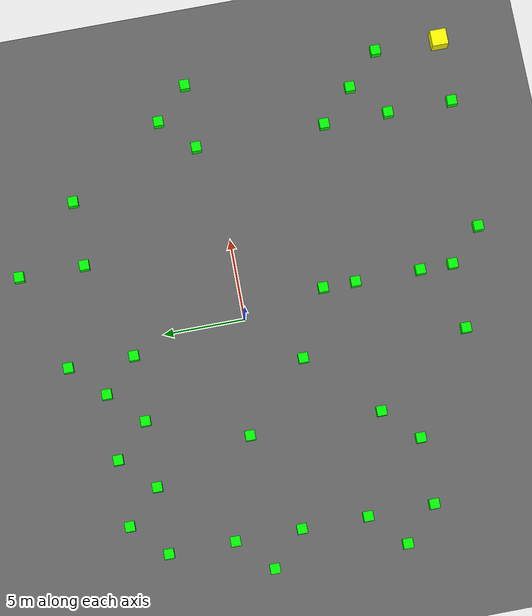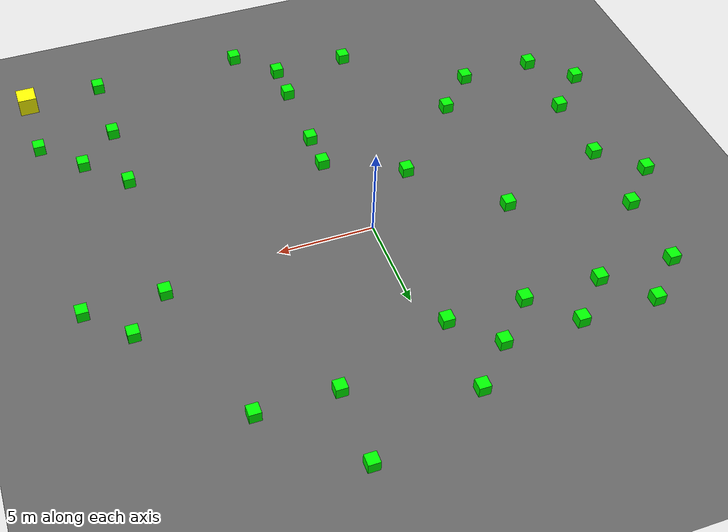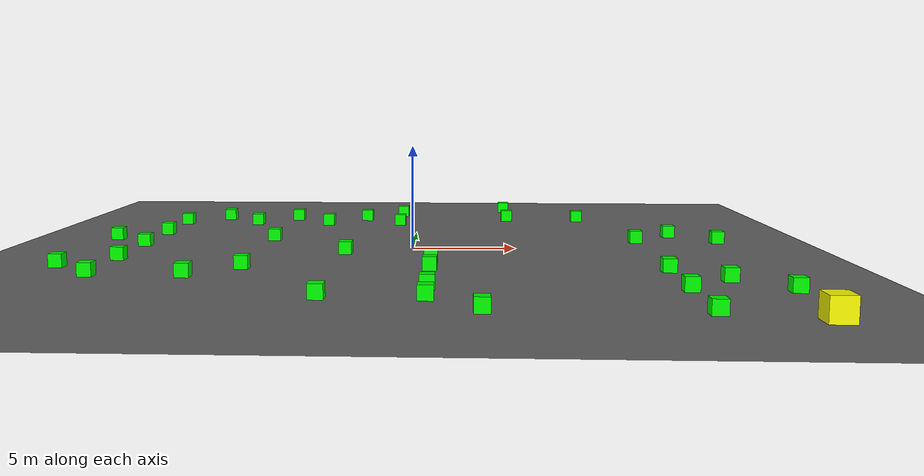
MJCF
<mujoco model="simple_navigation">
    <compiler angle="degree" coordinate="local" inertiafromgeom="true"/>
    <option integrator="RK4" timestep="0.01"/>

    <asset>
        <texture builtin="gradient" height="100" rgb1="0.6 0.8 1" rgb2="0 0 0" type="skybox" width="100"/>
        <texture name="floor_texture" type="2d" builtin="checker" width="100" height="100" rgb1="0 0 0" rgb2="0.8 0.8 0.8"/>
        <material name="MatPlane" reflectance="0.5" shininess="1" specular="1" texrepeat="10 10" texture="floor_texture"/>
    </asset>

    <!-- Excluding the contact between the agent and the goal, and the agent and the floor -->
    <contact>
        <exclude body1="agent" body2="goal"/>
        <exclude body1 = "agent" body2 = "floor"/>
    </contact>

    <extension>
        <plugin plugin = "mujoco.pid">
            <instance name = "pid1">
                <config key="kp" value="2"/>
                <config key="ki" value="0"/>
                <config key="kd" value="55"/>
            </instance>
        </plugin>
    </extension>

    <worldbody>
        <light cutoff="100" diffuse="1 1 1" dir="-0 0 -1.3" directional="true" exponent="1" pos="0 0 1.3" specular=".1 .1 .1"/>
        <body name="floor" pos="0 0 0">
            <geom name="floor_geom" type="plane" size="20 20 0.1" material="MatPlane"/>
        </body>

        <body name="goal" pos="-15.0 13.0 0">
            <geom name="goal_geom" type="plane" size="0.5 0.5 1" pos="0 0 0" rgba="1 0 0 1"/>
        </body>

        <body name="agent" pos="15.0 -15.0 0.5">
            <joint name="j1" type="slide" axis ="1 0 0 "/>
            <joint name="j2" type="slide" axis ="0 1 0 "/>
            <geom name="agent_geom" type="box" size="0.5 0.5 0.5" rgba="1 1 0 1"/>
        </body>

        <body name="obstacle1" pos="-1.0 7.0 0.5">
            <geom name="obstacle1_geom" type="box" size="0.3 0.3 0.3" rgba="0 1 0 1"/>
        </body>

        <body name="obstacle2" pos="-9.0 7.0 0.5">
            <geom name="obstacle2_geom" type="box" size="0.3 0.3 0.3" rgba="0 1 0 1"/>
        </body>

        <body name="obstacle3" pos="11.0 -15.0 0.5">
            <geom name="obstacle3_geom" type="box" size="0.3 0.3 0.3" rgba="0 1 0 1"/>
        </body>

        <body name="obstacle4" pos="-5.0 7.0 0.5">
            <geom name="obstacle4_geom" type="box" size="0.3 0.3 0.3" rgba="0 1 0 1"/>
        </body>

        <body name="obstacle5" pos="13.0 3.0 0.5">
            <geom name="obstacle5_geom" type="box" size="0.3 0.3 0.3" rgba="0 1 0 1"/>
        </body>

        <body name="obstacle6" pos="-1.0 11.0 0.5">
            <geom name="obstacle6_geom" type="box" size="0.3 0.3 0.3" rgba="0 1 0 1"/>
        </body>

        <body name="obstacle7" pos="-13.0 3.0 0.5">
            <geom name="obstacle7_geom" type="box" size="0.3 0.3 0.3" rgba="0 1 0 1"/>
        </body>

        <body name="obstacle8" pos="9.0 9.0 0.5">
            <geom name="obstacle8_geom" type="box" size="0.3 0.3 0.3" rgba="0 1 0 1"/>
        </body>

        <body name="obstacle9" pos="-3.0 9.0 0.5">
            <geom name="obstacle9_geom" type="box" size="0.3 0.3 0.3" rgba="0 1 0 1"/>
        </body>

        <body name="obstacle10" pos="-13.0 -5.0 0.5">
            <geom name="obstacle10_geom" type="box" size="0.3 0.3 0.3" rgba="0 1 0 1"/>
        </body>

        <body name="obstacle11" pos="1.0 -7.0 0.5">
            <geom name="obstacle11_geom" type="box" size="0.3 0.3 0.3" rgba="0 1 0 1"/>
        </body>

        <body name="obstacle12" pos="15.0 1.0 0.5">
            <geom name="obstacle12_geom" type="box" size="0.3 0.3 0.3" rgba="0 1 0 1"/>
        </body>

        <body name="obstacle13" pos="5.0 13.0 0.5">
            <geom name="obstacle13_geom" type="box" size="0.3 0.3 0.3" rgba="0 1 0 1"/>
        </body>

        <body name="obstacle14" pos="-15.0 1.0 0.5">
            <geom name="obstacle14_geom" type="box" size="0.3 0.3 0.3" rgba="0 1 0 1"/>
        </body>

        <body name="obstacle15" pos="-13.0 -9.0 0.5">
            <geom name="obstacle15_geom" type="box" size="0.3 0.3 0.3" rgba="0 1 0 1"/>
        </body>

        <body name="obstacle16" pos="1.0 -13.0 0.5">
            <geom name="obstacle16_geom" type="box" size="0.3 0.3 0.3" rgba="0 1 0 1"/>
        </body>

        <body name="obstacle17" pos="-7.0 1.0 0.5">
            <geom name="obstacle17_geom" type="box" size="0.3 0.3 0.3" rgba="0 1 0 1"/>
        </body>

        <body name="obstacle18" pos="-15.0 -7.0 0.5">
            <geom name="obstacle18_geom" type="box" size="0.3 0.3 0.3" rgba="0 1 0 1"/>
        </body>

        <body name="obstacle19" pos="-13.0 -1.0 0.5">
            <geom name="obstacle19_geom" type="box" size="0.3 0.3 0.3" rgba="0 1 0 1"/>
        </body>

        <body name="obstacle20" pos="3.0 -15.0 0.5">
            <geom name="obstacle20_geom" type="box" size="0.3 0.3 0.3" rgba="0 1 0 1"/>
        </body>

        <body name="obstacle21" pos="-7.0 -7.0 0.5">
            <geom name="obstacle21_geom" type="box" size="0.3 0.3 0.3" rgba="0 1 0 1"/>
        </body>

        <body name="obstacle22" pos="-3.0 -13.0 0.5">
            <geom name="obstacle22_geom" type="box" size="0.3 0.3 0.3" rgba="0 1 0 1"/>
        </body>

        <body name="obstacle23" pos="-13.0 7.0 0.5">
            <geom name="obstacle23_geom" type="box" size="0.3 0.3 0.3" rgba="0 1 0 1"/>
        </body>

        <body name="obstacle24" pos="1.0 -5.0 0.5">
            <geom name="obstacle24_geom" type="box" size="0.3 0.3 0.3" rgba="0 1 0 1"/>
        </body>

        <body name="obstacle25" pos="13.0 -9.0 0.5">
            <geom name="obstacle25_geom" type="box" size="0.3 0.3 0.3" rgba="0 1 0 1"/>
        </body>

        <body name="obstacle26" pos="-7.0 9.0 0.5">
            <geom name="obstacle26_geom" type="box" size="0.3 0.3 0.3" rgba="0 1 0 1"/>
        </body>

        <body name="obstacle27" pos="11.0 -7.0 0.5">
            <geom name="obstacle27_geom" type="box" size="0.3 0.3 0.3" rgba="0 1 0 1"/>
        </body>

        <body name="obstacle28" pos="1.0 -11.0 0.5">
            <geom name="obstacle28_geom" type="box" size="0.3 0.3 0.3" rgba="0 1 0 1"/>
        </body>

        <body name="obstacle29" pos="15.0 -11.0 0.5">
            <geom name="obstacle29_geom" type="box" size="0.3 0.3 0.3" rgba="0 1 0 1"/>
        </body>

        <body name="obstacle30" pos="5.0 9.0 0.5">
            <geom name="obstacle30_geom" type="box" size="0.3 0.3 0.3" rgba="0 1 0 1"/>
        </body>

        <body name="obstacle31" pos="-11.0 9.0 0.5">
            <geom name="obstacle31_geom" type="box" size="0.3 0.3 0.3" rgba="0 1 0 1"/>
        </body>

        <body name="obstacle32" pos="11.0 1.0 0.5">
            <geom name="obstacle32_geom" type="box" size="0.3 0.3 0.3" rgba="0 1 0 1"/>
        </body>

        <body name="obstacle33" pos="11.0 -11.0 0.5">
            <geom name="obstacle33_geom" type="box" size="0.3 0.3 0.3" rgba="0 1 0 1"/>
        </body>

        <body name="obstacle34" pos="-3.0 -3.0 0.5">
            <geom name="obstacle34_geom" type="box" size="0.3 0.3 0.3" rgba="0 1 0 1"/>
        </body>

        <body name="obstacle35" pos="-9.0 -9.0 0.5">
            <geom name="obstacle35_geom" type="box" size="0.3 0.3 0.3" rgba="0 1 0 1"/>
        </body>

    </worldbody>

    <sensor>
        <distance name="dist1" geom1="agent_geom" geom2="obstacle1_geom" cutoff="1.5"/>
        <distance name="dist2" geom1="agent_geom" geom2="obstacle2_geom" cutoff="1.5"/>
        <distance name="dist3" geom1="agent_geom" geom2="obstacle3_geom" cutoff="1.5"/>
        <distance name="dist4" geom1="agent_geom" geom2="obstacle4_geom" cutoff="1.5"/>
        <distance name="dist5" geom1="agent_geom" geom2="obstacle5_geom" cutoff="1.5"/>
        <distance name="dist6" geom1="agent_geom" geom2="obstacle6_geom" cutoff="1.5"/>
        <distance name="dist7" geom1="agent_geom" geom2="obstacle7_geom" cutoff="1.5"/>
        <distance name="dist8" geom1="agent_geom" geom2="obstacle8_geom" cutoff="1.5"/>
        <distance name="dist9" geom1="agent_geom" geom2="obstacle9_geom" cutoff="1.5"/>
        <distance name="dist10" geom1="agent_geom" geom2="obstacle10_geom" cutoff="1.5"/>
        <distance name="dist11" geom1="agent_geom" geom2="obstacle11_geom" cutoff="1.5"/>
        <distance name="dist12" geom1="agent_geom" geom2="obstacle12_geom" cutoff="1.5"/>
        <distance name="dist13" geom1="agent_geom" geom2="obstacle13_geom" cutoff="1.5"/>
        <distance name="dist14" geom1="agent_geom" geom2="obstacle14_geom" cutoff="1.5"/>
        <distance name="dist15" geom1="agent_geom" geom2="obstacle15_geom" cutoff="1.5"/>
        <distance name="dist16" geom1="agent_geom" geom2="obstacle16_geom" cutoff="1.5"/>
        <distance name="dist17" geom1="agent_geom" geom2="obstacle17_geom" cutoff="1.5"/>
        <distance name="dist18" geom1="agent_geom" geom2="obstacle18_geom" cutoff="1.5"/>
        <distance name="dist19" geom1="agent_geom" geom2="obstacle19_geom" cutoff="1.5"/>
        <distance name="dist20" geom1="agent_geom" geom2="obstacle20_geom" cutoff="1.5"/>
        <distance name="dist21" geom1="agent_geom" geom2="obstacle21_geom" cutoff="1.5"/>
        <distance name="dist22" geom1="agent_geom" geom2="obstacle22_geom" cutoff="1.5"/>
        <distance name="dist23" geom1="agent_geom" geom2="obstacle23_geom" cutoff="1.5"/>
        <distance name="dist24" geom1="agent_geom" geom2="obstacle24_geom" cutoff="1.5"/>
        <distance name="dist25" geom1="agent_geom" geom2="obstacle25_geom" cutoff="1.5"/>
        <distance name="dist26" geom1="agent_geom" geom2="obstacle26_geom" cutoff="1.5"/>
        <distance name="dist27" geom1="agent_geom" geom2="obstacle27_geom" cutoff="1.5"/>
        <distance name="dist28" geom1="agent_geom" geom2="obstacle28_geom" cutoff="1.5"/>
        <distance name="dist29" geom1="agent_geom" geom2="obstacle29_geom" cutoff="1.5"/>
        <distance name="dist30" geom1="agent_geom" geom2="obstacle30_geom" cutoff="1.5"/>
        <distance name="dist31" geom1="agent_geom" geom2="obstacle31_geom" cutoff="1.5"/>
        <distance name="dist32" geom1="agent_geom" geom2="obstacle32_geom" cutoff="1.5"/>
        <distance name="dist33" geom1="agent_geom" geom2="obstacle33_geom" cutoff="1.5"/>
        <distance name="dist34" geom1="agent_geom" geom2="obstacle34_geom" cutoff="1.5"/>
        <distance name="dist35" geom1="agent_geom" geom2="obstacle35_geom" cutoff="1.5"/>
    </sensor>

    <actuator>
        <plugin joint="j1" plugin="mujoco.pid" instance="pid1" />
        <plugin joint="j2" plugin="mujoco.pid" instance="pid1"/>
    </actuator>
</mujoco>
